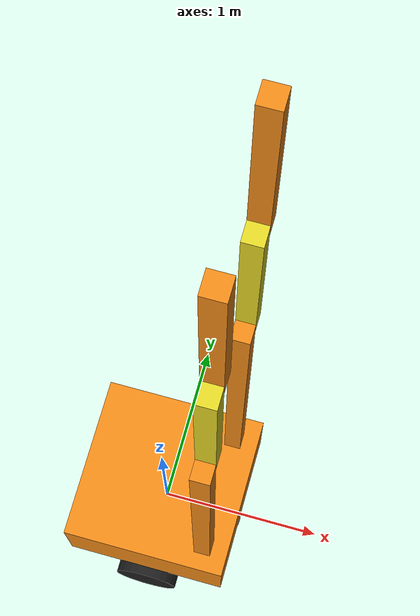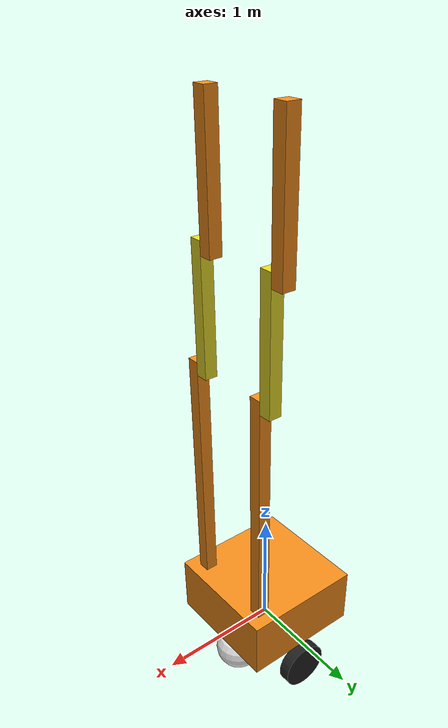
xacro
<?xml version="1.0"?>
<robot xmlns:xacro="http://www.ros.org/wiki/xacro" name="multi_robot_example">
  <xacro:arg name="prefix" default="" />
  <xacro:arg name="prefix_arm_right" default="arm_right_" />
  <xacro:arg name="prefix_arm_left" default="arm_left_" />
  <xacro:arg name="use_sim" default="false" />
  <xacro:arg name="use_mock_hardware" default="false" />

  <!-- Import Materials -->
  <xacro:include filename="$(find ros2_control_demo_description)/rrbot/urdf/rrbot.materials.xacro" />

  <!-- Import Diff Drive Robot -->
  <xacro:include filename="$(find basic_mobile_base)/diffbot/urdf/diffbot_description.urdf.xacro" />

  <xacro:include filename="$(find ros2_control_demo_example_2)/ros2_control/diffbot.ros2_control.xacro" />
  <xacro:diffbot prefix="$(arg prefix)" />
  <xacro:diffbot_ros2_control
      name="DiffBot"
      prefix="$(arg prefix)"
      use_mock_hardware="$(arg use_mock_hardware)"/>

  <!-- Import Right Arm -->
  <xacro:include filename="$(find ros2_control_demo_description)/rrbot/urdf/rrbot_description.urdf.xacro"/>

  <xacro:include filename="$(find ros2_control_demo_example_1)/ros2_control/rrbot.ros2_control.xacro"/>
  <xacro:rrbot parent="base_link" prefix="$(arg prefix_arm_right)">
    <origin xyz="0.35 -0.35 0.5" rpy="0 0 0" />
  </xacro:rrbot>
  <xacro:rrbot_ros2_control
      name="RRBot_Right"
      prefix="$(arg prefix_arm_right)" />

  <!-- Import Left Arm -->
  <xacro:rrbot parent="base_link" prefix="$(arg prefix_arm_left)">
    <origin xyz="0.35 0.35 0.5" rpy="0 0 0" />
  </xacro:rrbot>
  <xacro:rrbot_ros2_control
      name="RRBot_Left"
      prefix="$(arg prefix_arm_left)" />

</robot>

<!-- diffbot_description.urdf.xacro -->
<robot xmlns:xacro="http://www.ros.org/wiki/xacro">

  <xacro:macro name="diffbot" params="prefix">

  <!-- Constants for robot dimensions -->
  <xacro:property name="PI" value="3.1415926535897931"/>
  <xacro:property name="base_mass" value="0.3" /> <!-- arbitrary value for base mass -->
  <xacro:property name="base_width" value="1" />
  <xacro:property name="base_length" value="1" />
  <xacro:property name="base_height" value="0.5" />
  <xacro:property name="wheel_mass" value="0.3" /> <!-- arbitrary value for wheel mass -->
  <xacro:property name="wheel_len" value="0.1" />
  <xacro:property name="wheel_radius" value="0.2" />
  <xacro:property name="caster_wheel_mass" value="0.1" /> <!-- arbitrary value for caster wheel mass -->
  <xacro:property name="caster_wheel_radius" value="0.2" />
  <xacro:property name="z_offset" value="-${base_height/2}" /> <!-- Space btw top of beam and the each joint -->

  <!-- Base Link -->
  <link name="${prefix}base_link">
    <collision>
      <origin xyz="0 0 0" rpy="0 0 0"/>
      <geometry>
        <box size="${base_width} ${base_length} ${base_height}"/>
      </geometry>
    </collision>

    <visual>
      <origin xyz="0 0 ${base_height/2}" rpy="0 0 0"/>
      <geometry>
        <box size="${base_width} ${base_length} ${base_height}"/>
      </geometry>
      <material name="orange"/>
    </visual>

    <inertial>
      <origin xyz="0 0 0" rpy="0 0 0"/>
      <mass value="${base_mass}"/>
      <inertia
        ixx="${base_mass / 12.0 * (base_length*base_length + base_height*base_height)}" ixy="0.0" ixz="0.0"
        iyy="${base_mass / 12.0 * (base_height*base_height + base_width*base_width)}" iyz="0.0"
        izz="${base_mass / 12.0 * (base_width*base_width + base_length*base_length)}"/>
      </inertial>
    </link>

    <joint name="${prefix}left_wheel_joint" type="continuous">
      <parent link="${prefix}base_link"/>
      <child link="${prefix}left_wheel"/>
      <origin xyz="0 -${base_width/2} ${z_offset}" rpy="0 0 0"/>
      <axis xyz="0 1 0"/>
      <dynamics damping="0.2"/>
      <limit effort="100" velocity="1.0"/>
    </joint>

    <!-- left wheel Link -->
    <link name="${prefix}left_wheel">
      <collision>
        <origin xyz="0 0 0" rpy="${PI/2} 0 0"/>
        <geometry>
          <cylinder length="${wheel_len}" radius="${wheel_radius}"/>
        </geometry>
      </collision>

      <visual>
        <origin xyz="0 0 0" rpy="${PI/2} 0 0"/>
        <geometry>
          <cylinder length="${wheel_len}" radius="${wheel_radius}"/>
        </geometry>
        <material name="black"/>
      </visual>

      <inertial>
        <origin xyz="0 0 0" rpy="${PI/2} 0 0"/>
        <mass value="${wheel_mass}"/>
        <inertia
          ixx="${wheel_mass / 12.0 * (3*wheel_radius*wheel_radius + wheel_len*wheel_len)}" ixy="0.0" ixz="0.0"
          iyy="${wheel_mass / 12.0 * (3*wheel_radius*wheel_radius + wheel_len*wheel_len)}" iyz="0.0"
          izz="${wheel_mass / 2.0 * wheel_radius*wheel_radius}"/>
        </inertial>
      </link>

    <joint name="${prefix}right_wheel_joint" type="continuous">
      <parent link="${prefix}base_link"/>
      <child link="${prefix}right_wheel"/>
      <origin xyz="0 ${base_width/2} ${z_offset}" rpy="0 0 0"/>
      <axis xyz="0 1 0"/>
      <dynamics damping="0.2"/>
      <limit effort="100" velocity="1.0"/>
    </joint>

    <!-- right wheel Link -->
    <link name="${prefix}right_wheel">
      <collision>
        <origin xyz="0 0 0" rpy="${PI/2} 0 0"/>
        <geometry>
          <cylinder length="${wheel_len}" radius="${wheel_radius}"/>
        </geometry>
      </collision>

      <visual>
        <origin xyz="0 0 0" rpy="${PI/2} 0 0"/>
        <geometry>
          <cylinder length="${wheel_len}" radius="${wheel_radius}"/>
        </geometry>
        <material name="black"/>
      </visual>

      <inertial>
        <origin xyz="0 0 0" rpy="${PI/2} 0 0"/>
        <mass value="${wheel_mass}"/>
        <inertia
          ixx="${wheel_mass / 12.0 * (3*wheel_radius*wheel_radius + wheel_len*wheel_len)}" ixy="0.0" ixz="0.0"
          iyy="${wheel_mass / 12.0 * (3*wheel_radius*wheel_radius + wheel_len*wheel_len)}" iyz="0.0"
          izz="${wheel_mass / 2.0 * wheel_radius*wheel_radius}"/>
        </inertial>
      </link>

    <joint name="${prefix}caster_frontal_wheel_joint" type="fixed">
      <parent link="${prefix}base_link"/>
      <child link="${prefix}caster_frontal_wheel"/>
      <origin xyz="${base_width/2 - caster_wheel_radius} 0 ${z_offset}" rpy="0 0 0"/>
    </joint>

    <!-- caster frontal wheel Link -->
    <link name="${prefix}caster_frontal_wheel">
      <collision>
        <origin xyz="0 0 0" rpy="0 0 0"/>
        <geometry>
          <sphere radius="${caster_wheel_radius}"/>
        </geometry>
      </collision>

      <visual>
        <origin xyz="0 0 0" rpy="0 0 0"/>
        <geometry>
          <sphere radius="${caster_wheel_radius}"/>
        </geometry>
        <material name="white"/>
      </visual>

      <inertial>
        <origin xyz="0 0 0" rpy="0 0 0"/>
        <mass value="${caster_wheel_mass}"/>
        <inertia
          ixx="${caster_wheel_mass * 0.4 * (caster_wheel_radius * caster_wheel_radius)}" ixy="0.0" ixz="0.0"
          iyy="${caster_wheel_mass * 0.4 * (caster_wheel_radius * caster_wheel_radius)}" iyz="0.0"
          izz="${caster_wheel_mass * 0.4 * (caster_wheel_radius * caster_wheel_radius)}"/>
        </inertial>
      </link>

    <joint name="${prefix}caster_rear_wheel_joint" type="fixed">
      <parent link="${prefix}base_link"/>
      <child link="${prefix}caster_rear_wheel"/>
      <origin xyz="${-base_width/2 + caster_wheel_radius} 0 ${z_offset}" rpy="0 0 0"/>
    </joint>

    <!-- caster rear wheel Link -->
    <link name="${prefix}caster_rear_wheel">
      <collision>
        <origin xyz="0 0 0" rpy="0 0 0"/>
        <geometry>
          <sphere radius="${caster_wheel_radius}"/>
        </geometry>
      </collision>

      <visual>
        <origin xyz="0 0 0" rpy="0 0 0"/>
        <geometry>
          <sphere radius="${caster_wheel_radius}"/>
        </geometry>
        <material name="white"/>
      </visual>

      <inertial>
        <origin xyz="0 0 0" rpy="0 0 0"/>
        <mass value="${caster_wheel_mass}"/>
        <inertia
          ixx="${caster_wheel_mass * 0.4 * (caster_wheel_radius * caster_wheel_radius)}" ixy="0.0" ixz="0.0"
          iyy="${caster_wheel_mass * 0.4 * (caster_wheel_radius * caster_wheel_radius)}" iyz="0.0"
          izz="${caster_wheel_mass * 0.4 * (caster_wheel_radius * caster_wheel_radius)}"/>
        </inertial>
      </link>

  </xacro:macro>

</robot>

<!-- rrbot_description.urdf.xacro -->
<robot xmlns:xacro="http://www.ros.org/wiki/xacro">

  <xacro:macro name="rrbot" params="parent prefix *origin">

  <!-- Constants for robot dimensions -->
  <xacro:property name="mass" value="1" /> <!-- arbitrary value for mass -->
  <xacro:property name="width" value="0.1" /> <!-- Square dimensions (widthxwidth) of beams -->
  <xacro:property name="height1" value="2" /> <!-- Link 1 -->
  <xacro:property name="height2" value="1" /> <!-- Link 2 -->
  <xacro:property name="height3" value="1" /> <!-- Link 3 -->
  <xacro:property name="axel_offset" value="0.05" /> <!-- Space btw top of beam and the each joint -->

  <joint name="${prefix}base_joint" type="fixed">
    <xacro:insert_block name="origin" />
    <parent link="${parent}"/>
    <child link="${prefix}base_link" />
  </joint>

  <!-- Base Link -->
  <link name="${prefix}base_link">
    <collision>
      <origin xyz="0 0 ${height1/2}" rpy="0 0 0"/>
      <geometry>
        <box size="${width} ${width} ${height1}"/>
      </geometry>
    </collision>

    <visual>
      <origin xyz="0 0 ${height1/2}" rpy="0 0 0"/>
      <geometry>
        <box size="${width} ${width} ${height1}"/>
      </geometry>
      <material name="orange"/>
    </visual>

    <inertial>
      <origin xyz="0 0 ${height1/2}" rpy="0 0 0"/>
      <mass value="${mass}"/>
      <inertia
        ixx="${mass / 12.0 * (width*width + height1*height1)}" ixy="0.0" ixz="0.0"
        iyy="${mass / 12.0 * (height1*height1 + width*width)}" iyz="0.0"
        izz="${mass / 12.0 * (width*width + width*width)}"/>
    </inertial>
  </link>

  <joint name="${prefix}joint1" type="continuous">
    <parent link="${prefix}base_link"/>
    <child link="${prefix}link1"/>
    <origin xyz="0 ${width} ${height1 - axel_offset}" rpy="0 0 0"/>
    <axis xyz="0 1 0"/>
    <dynamics damping="0.7"/>
    <limit effort="100" velocity="1.0"/>
  </joint>

  <!-- Middle Link -->
  <link name="${prefix}link1">
    <collision>
      <origin xyz="0 0 ${height2/2 - axel_offset}" rpy="0 0 0"/>
      <geometry>
        <box size="${width} ${width} ${height2}"/>
      </geometry>
    </collision>

    <visual>
      <origin xyz="0 0 ${height2/2 - axel_offset}" rpy="0 0 0"/>
      <geometry>
        <box size="${width} ${width} ${height2}"/>
      </geometry>
      <material name="yellow"/>
    </visual>

    <inertial>
      <origin xyz="0 0 ${height2/2 - axel_offset}" rpy="0 0 0"/>
      <mass value="${mass}"/>
      <inertia
        ixx="${mass / 12.0 * (width*width + height2*height2)}" ixy="0.0" ixz="0.0"
        iyy="${mass / 12.0 * (height2*height2 + width*width)}" iyz="0.0"
        izz="${mass / 12.0 * (width*width + width*width)}"/>
    </inertial>
  </link>

  <joint name="${prefix}joint2" type="continuous">
    <parent link="${prefix}link1"/>
    <child link="${prefix}link2"/>
    <origin xyz="0 ${width} ${height2 - axel_offset*2}" rpy="0 0 0"/>
    <axis xyz="0 1 0"/>
    <dynamics damping="0.7"/>
    <limit effort="100" velocity="1.0"/>
  </joint>

  <!-- Top Link -->
  <link name="${prefix}link2">
    <collision>
      <origin xyz="0 0 ${height3/2 - axel_offset}" rpy="0 0 0"/>
      <geometry>
        <box size="${width} ${width} ${height3}"/>
      </geometry>
    </collision>

    <visual>
      <origin xyz="0 0 ${height3/2 - axel_offset}" rpy="0 0 0"/>
      <geometry>
        <box size="${width} ${width} ${height3}"/>
      </geometry>
      <material name="orange"/>
    </visual>

    <inertial>
      <origin xyz="0 0 ${height3/2 - axel_offset}" rpy="0 0 0"/>
      <mass value="${mass}"/>
      <inertia
        ixx="${mass / 12.0 * (width*width + height3*height3)}" ixy="0.0" ixz="0.0"
        iyy="${mass / 12.0 * (height3*height3 + width*width)}" iyz="0.0"
        izz="${mass / 12.0 * (width*width + width*width)}"/>
    </inertial>
  </link>

  <joint name="${prefix}tool_joint" type="fixed">
    <origin xyz="0 0 1" rpy="0 0 0" />
    <parent link="${prefix}link2"/>
    <child link="${prefix}tool_link" />
  </joint>

  <!-- Tool Link -->
  <link name="${prefix}tool_link">
  </link>

  </xacro:macro>

</robot>
